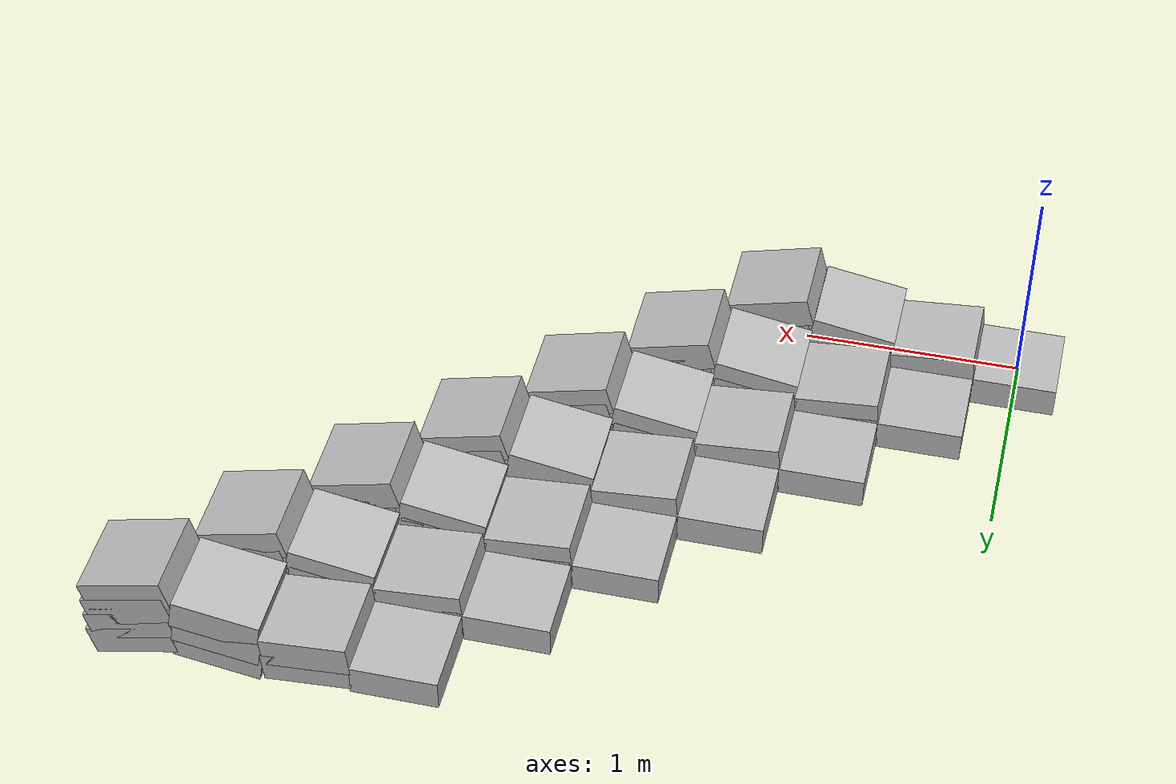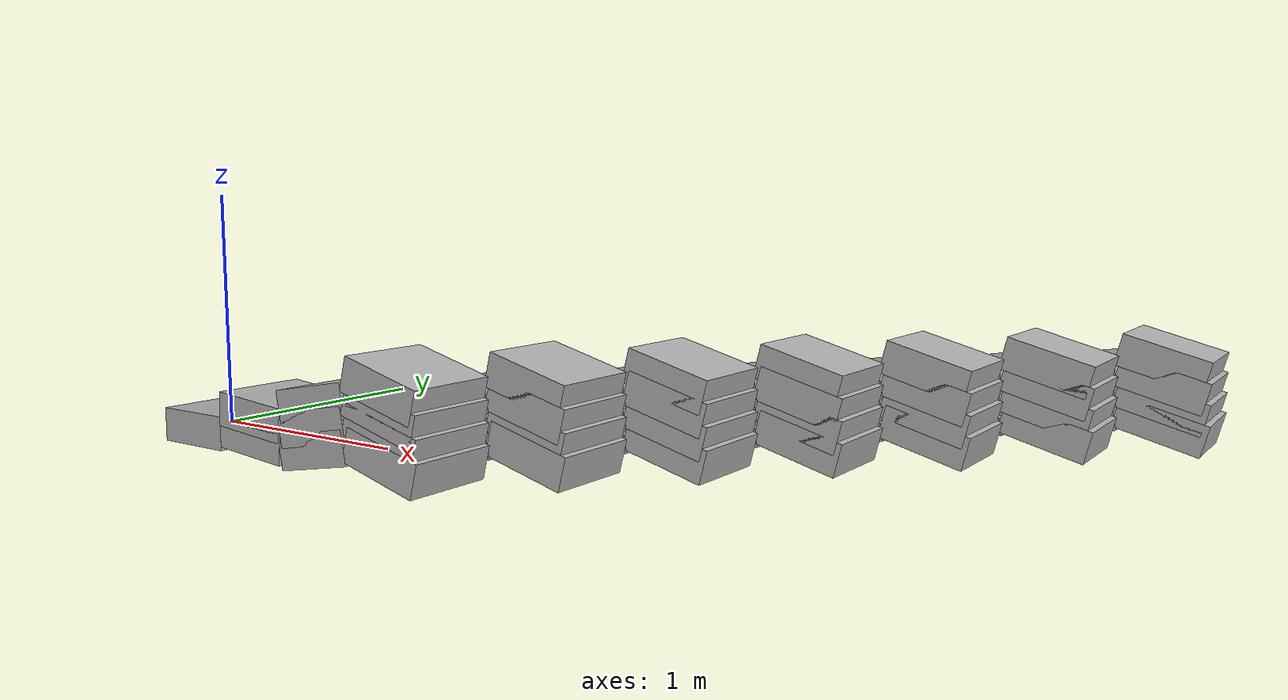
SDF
<?xml version="1.0" ?>
<sdf version="1.5">

  <model name="block_angle_steps">
    <pose>0 0 0 0 0 0</pose>

          <include>
            <name>block_0_0_0</name>
            <pose> 0.0 0.0 0.0 -0.0 0 1.570796 </pose>
            <uri>model://cinder_block_wide</uri>
          </include>

          <include>
            <name>block_0_1_1</name>
            <pose> 0.387 0.0 0.092 0.0872663888888889 0 1.570796 </pose>
            <uri>model://cinder_block_wide</uri>
          </include>

          <include>
            <name>block_0_1_0</name>
            <pose> 0.387 0.0 0.0 0.0872663888888889 0 1.570796 </pose>
            <uri>model://cinder_block_wide</uri>
          </include>

          <include>
            <name>block_0_2_2</name>
            <pose> 0.774 0.0 0.184 -0.1745327777777778 0 1.570796 </pose>
            <uri>model://cinder_block_wide</uri>
          </include>

          <include>
            <name>block_0_2_1</name>
            <pose> 0.774 0.0 0.092 -0.1745327777777778 0 1.570796 </pose>
            <uri>model://cinder_block_wide</uri>
          </include>

          <include>
            <name>block_0_2_0</name>
            <pose> 0.774 0.0 0.0 -0.1745327777777778 0 1.570796 </pose>
            <uri>model://cinder_block_wide</uri>
          </include>

          <include>
            <name>block_0_3_3</name>
            <pose> 1.161 0.0 0.276 0.2617991666666667 0 1.570796 </pose>
            <uri>model://cinder_block_wide</uri>
          </include>

          <include>
            <name>block_0_3_2</name>
            <pose> 1.161 0.0 0.184 0.2617991666666667 0 1.570796 </pose>
            <uri>model://cinder_block_wide</uri>
          </include>

          <include>
            <name>block_0_3_1</name>
            <pose> 1.161 0.0 0.092 0.2617991666666667 0 1.570796 </pose>
            <uri>model://cinder_block_wide</uri>
          </include>

          <include>
            <name>block_0_3_0</name>
            <pose> 1.161 0.0 0.0 0.2617991666666667 0 1.570796 </pose>
            <uri>model://cinder_block_wide</uri>
          </include>

          <include>
            <name>block_1_0_0</name>
            <pose> 0.387 0.387 0.0 -0.0 0 1.570796 </pose>
            <uri>model://cinder_block_wide</uri>
          </include>

          <include>
            <name>block_1_1_1</name>
            <pose> 0.774 0.387 0.092 0.0872663888888889 0 1.570796 </pose>
            <uri>model://cinder_block_wide</uri>
          </include>

          <include>
            <name>block_1_1_0</name>
            <pose> 0.774 0.387 0.0 0.0872663888888889 0 1.570796 </pose>
            <uri>model://cinder_block_wide</uri>
          </include>

          <include>
            <name>block_1_2_2</name>
            <pose> 1.161 0.387 0.184 -0.1745327777777778 0 1.570796 </pose>
            <uri>model://cinder_block_wide</uri>
          </include>

          <include>
            <name>block_1_2_1</name>
            <pose> 1.161 0.387 0.092 -0.1745327777777778 0 1.570796 </pose>
            <uri>model://cinder_block_wide</uri>
          </include>

          <include>
            <name>block_1_2_0</name>
            <pose> 1.161 0.387 0.0 -0.1745327777777778 0 1.570796 </pose>
            <uri>model://cinder_block_wide</uri>
          </include>

          <include>
            <name>block_1_3_3</name>
            <pose> 1.548 0.387 0.276 0.2617991666666667 0 1.570796 </pose>
            <uri>model://cinder_block_wide</uri>
          </include>

          <include>
            <name>block_1_3_2</name>
            <pose> 1.548 0.387 0.184 0.2617991666666667 0 1.570796 </pose>
            <uri>model://cinder_block_wide</uri>
          </include>

          <include>
            <name>block_1_3_1</name>
            <pose> 1.548 0.387 0.092 0.2617991666666667 0 1.570796 </pose>
            <uri>model://cinder_block_wide</uri>
          </include>

          <include>
            <name>block_1_3_0</name>
            <pose> 1.548 0.387 0.0 0.2617991666666667 0 1.570796 </pose>
            <uri>model://cinder_block_wide</uri>
          </include>

          <include>
            <name>block_2_0_0</name>
            <pose> 0.774 0.774 0.0 -0.0 0 1.570796 </pose>
            <uri>model://cinder_block_wide</uri>
          </include>

          <include>
            <name>block_2_1_1</name>
            <pose> 1.161 0.774 0.092 0.0872663888888889 0 1.570796 </pose>
            <uri>model://cinder_block_wide</uri>
          </include>

          <include>
            <name>block_2_1_0</name>
            <pose> 1.161 0.774 0.0 0.0872663888888889 0 1.570796 </pose>
            <uri>model://cinder_block_wide</uri>
          </include>

          <include>
            <name>block_2_2_2</name>
            <pose> 1.548 0.774 0.184 -0.1745327777777778 0 1.570796 </pose>
            <uri>model://cinder_block_wide</uri>
          </include>

          <include>
            <name>block_2_2_1</name>
            <pose> 1.548 0.774 0.092 -0.1745327777777778 0 1.570796 </pose>
            <uri>model://cinder_block_wide</uri>
          </include>

          <include>
            <name>block_2_2_0</name>
            <pose> 1.548 0.774 0.0 -0.1745327777777778 0 1.570796 </pose>
            <uri>model://cinder_block_wide</uri>
          </include>

          <include>
            <name>block_2_3_3</name>
            <pose> 1.935 0.774 0.276 0.2617991666666667 0 1.570796 </pose>
            <uri>model://cinder_block_wide</uri>
          </include>

          <include>
            <name>block_2_3_2</name>
            <pose> 1.935 0.774 0.184 0.2617991666666667 0 1.570796 </pose>
            <uri>model://cinder_block_wide</uri>
          </include>

          <include>
            <name>block_2_3_1</name>
            <pose> 1.935 0.774 0.092 0.2617991666666667 0 1.570796 </pose>
            <uri>model://cinder_block_wide</uri>
          </include>

          <include>
            <name>block_2_3_0</name>
            <pose> 1.935 0.774 0.0 0.2617991666666667 0 1.570796 </pose>
            <uri>model://cinder_block_wide</uri>
          </include>

          <include>
            <name>block_3_0_0</name>
            <pose> 1.161 1.161 0.0 -0.0 0 1.570796 </pose>
            <uri>model://cinder_block_wide</uri>
          </include>

          <include>
            <name>block_3_1_1</name>
            <pose> 1.548 1.161 0.092 0.0872663888888889 0 1.570796 </pose>
            <uri>model://cinder_block_wide</uri>
          </include>

          <include>
            <name>block_3_1_0</name>
            <pose> 1.548 1.161 0.0 0.0872663888888889 0 1.570796 </pose>
            <uri>model://cinder_block_wide</uri>
          </include>

          <include>
            <name>block_3_2_2</name>
            <pose> 1.935 1.161 0.184 -0.1745327777777778 0 1.570796 </pose>
            <uri>model://cinder_block_wide</uri>
          </include>

          <include>
            <name>block_3_2_1</name>
            <pose> 1.935 1.161 0.092 -0.1745327777777778 0 1.570796 </pose>
            <uri>model://cinder_block_wide</uri>
          </include>

          <include>
            <name>block_3_2_0</name>
            <pose> 1.935 1.161 0.0 -0.1745327777777778 0 1.570796 </pose>
            <uri>model://cinder_block_wide</uri>
          </include>

          <include>
            <name>block_3_3_3</name>
            <pose> 2.322 1.161 0.276 0.2617991666666667 0 1.570796 </pose>
            <uri>model://cinder_block_wide</uri>
          </include>

          <include>
            <name>block_3_3_2</name>
            <pose> 2.322 1.161 0.184 0.2617991666666667 0 1.570796 </pose>
            <uri>model://cinder_block_wide</uri>
          </include>

          <include>
            <name>block_3_3_1</name>
            <pose> 2.322 1.161 0.092 0.2617991666666667 0 1.570796 </pose>
            <uri>model://cinder_block_wide</uri>
          </include>

          <include>
            <name>block_3_3_0</name>
            <pose> 2.322 1.161 0.0 0.2617991666666667 0 1.570796 </pose>
            <uri>model://cinder_block_wide</uri>
          </include>

          <include>
            <name>block_4_0_0</name>
            <pose> 1.548 1.548 0.0 -0.0 0 1.570796 </pose>
            <uri>model://cinder_block_wide</uri>
          </include>

          <include>
            <name>block_4_1_1</name>
            <pose> 1.935 1.548 0.092 0.0872663888888889 0 1.570796 </pose>
            <uri>model://cinder_block_wide</uri>
          </include>

          <include>
            <name>block_4_1_0</name>
            <pose> 1.935 1.548 0.0 0.0872663888888889 0 1.570796 </pose>
            <uri>model://cinder_block_wide</uri>
          </include>

          <include>
            <name>block_4_2_2</name>
            <pose> 2.322 1.548 0.184 -0.1745327777777778 0 1.570796 </pose>
            <uri>model://cinder_block_wide</uri>
          </include>

          <include>
            <name>block_4_2_1</name>
            <pose> 2.322 1.548 0.092 -0.1745327777777778 0 1.570796 </pose>
            <uri>model://cinder_block_wide</uri>
          </include>

          <include>
            <name>block_4_2_0</name>
            <pose> 2.322 1.548 0.0 -0.1745327777777778 0 1.570796 </pose>
            <uri>model://cinder_block_wide</uri>
          </include>

          <include>
            <name>block_4_3_3</name>
            <pose> 2.709 1.548 0.276 0.2617991666666667 0 1.570796 </pose>
            <uri>model://cinder_block_wide</uri>
          </include>

          <include>
            <name>block_4_3_2</name>
            <pose> 2.709 1.548 0.184 0.2617991666666667 0 1.570796 </pose>
            <uri>model://cinder_block_wide</uri>
          </include>

          <include>
            <name>block_4_3_1</name>
            <pose> 2.709 1.548 0.092 0.2617991666666667 0 1.570796 </pose>
            <uri>model://cinder_block_wide</uri>
          </include>

          <include>
            <name>block_4_3_0</name>
            <pose> 2.709 1.548 0.0 0.2617991666666667 0 1.570796 </pose>
            <uri>model://cinder_block_wide</uri>
          </include>

          <include>
            <name>block_5_0_0</name>
            <pose> 1.935 1.935 0.0 -0.0 0 1.570796 </pose>
            <uri>model://cinder_block_wide</uri>
          </include>

          <include>
            <name>block_5_1_1</name>
            <pose> 2.322 1.935 0.092 0.0872663888888889 0 1.570796 </pose>
            <uri>model://cinder_block_wide</uri>
          </include>

          <include>
            <name>block_5_1_0</name>
            <pose> 2.322 1.935 0.0 0.0872663888888889 0 1.570796 </pose>
            <uri>model://cinder_block_wide</uri>
          </include>

          <include>
            <name>block_5_2_2</name>
            <pose> 2.709 1.935 0.184 -0.1745327777777778 0 1.570796 </pose>
            <uri>model://cinder_block_wide</uri>
          </include>

          <include>
            <name>block_5_2_1</name>
            <pose> 2.709 1.935 0.092 -0.1745327777777778 0 1.570796 </pose>
            <uri>model://cinder_block_wide</uri>
          </include>

          <include>
            <name>block_5_2_0</name>
            <pose> 2.709 1.935 0.0 -0.1745327777777778 0 1.570796 </pose>
            <uri>model://cinder_block_wide</uri>
          </include>

          <include>
            <name>block_5_3_3</name>
            <pose> 3.096 1.935 0.276 0.2617991666666667 0 1.570796 </pose>
            <uri>model://cinder_block_wide</uri>
          </include>

          <include>
            <name>block_5_3_2</name>
            <pose> 3.096 1.935 0.184 0.2617991666666667 0 1.570796 </pose>
            <uri>model://cinder_block_wide</uri>
          </include>

          <include>
            <name>block_5_3_1</name>
            <pose> 3.096 1.935 0.092 0.2617991666666667 0 1.570796 </pose>
            <uri>model://cinder_block_wide</uri>
          </include>

          <include>
            <name>block_5_3_0</name>
            <pose> 3.096 1.935 0.0 0.2617991666666667 0 1.570796 </pose>
            <uri>model://cinder_block_wide</uri>
          </include>

          <include>
            <name>block_6_0_0</name>
            <pose> 2.322 2.322 0.0 -0.0 0 1.570796 </pose>
            <uri>model://cinder_block_wide</uri>
          </include>

          <include>
            <name>block_6_1_1</name>
            <pose> 2.709 2.322 0.092 0.0872663888888889 0 1.570796 </pose>
            <uri>model://cinder_block_wide</uri>
          </include>

          <include>
            <name>block_6_1_0</name>
            <pose> 2.709 2.322 0.0 0.0872663888888889 0 1.570796 </pose>
            <uri>model://cinder_block_wide</uri>
          </include>

          <include>
            <name>block_6_2_2</name>
            <pose> 3.096 2.322 0.184 -0.1745327777777778 0 1.570796 </pose>
            <uri>model://cinder_block_wide</uri>
          </include>

          <include>
            <name>block_6_2_1</name>
            <pose> 3.096 2.322 0.092 -0.1745327777777778 0 1.570796 </pose>
            <uri>model://cinder_block_wide</uri>
          </include>

          <include>
            <name>block_6_2_0</name>
            <pose> 3.096 2.322 0.0 -0.1745327777777778 0 1.570796 </pose>
            <uri>model://cinder_block_wide</uri>
          </include>

          <include>
            <name>block_6_3_3</name>
            <pose> 3.483 2.322 0.276 0.2617991666666667 0 1.570796 </pose>
            <uri>model://cinder_block_wide</uri>
          </include>

          <include>
            <name>block_6_3_2</name>
            <pose> 3.483 2.322 0.184 0.2617991666666667 0 1.570796 </pose>
            <uri>model://cinder_block_wide</uri>
          </include>

          <include>
            <name>block_6_3_1</name>
            <pose> 3.483 2.322 0.092 0.2617991666666667 0 1.570796 </pose>
            <uri>model://cinder_block_wide</uri>
          </include>

          <include>
            <name>block_6_3_0</name>
            <pose> 3.483 2.322 0.0 0.2617991666666667 0 1.570796 </pose>
            <uri>model://cinder_block_wide</uri>
          </include>

  </model>

</sdf>

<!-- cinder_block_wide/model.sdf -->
<sdf version="1.5">
  <model name="cinder_block_wide">
    <link name="link">
      <inertial>
        <pose>0 0  0.146 0 0 0</pose>
        <mass>5</mass>
        <!-- approximate as uniform box 0.387 x 0.387 x 0.092 m -->
        <inertia>
          <ixx>0.06814656666666667</ixx>
          <ixy>0.0000</ixy>
          <iyy>0.06814656666666667</iyy>
          <ixz>0.0000</ixz>
          <iyz>0.0000</iyz>
          <izz>0.1248075</izz>
        </inertia>
      </inertial>
      <visual name="visual">
        <geometry>

          <box>
            <size>0.387353556 0.387353556 0.146</size>
          </box>
        </geometry>
      </visual>

      <collision name="block_collision">
       <pose>0 0 0 0 0 0</pose>
        <geometry>
          <box>
            <size>0.387353556 0.387353556 0.146</size>
          </box>
        </geometry>
        <surface>
          <contact>
            <ode>
              <max_vel>0.1</max_vel>
              <min_depth>0.001</min_depth>
            </ode>
          </contact>
          <friction>
            <ode>
              <mu>1.0</mu>
              <mu2>1.0</mu2>
            </ode>
          </friction>
        </surface>

      </collision>

    </link>
  </model>
</sdf>
